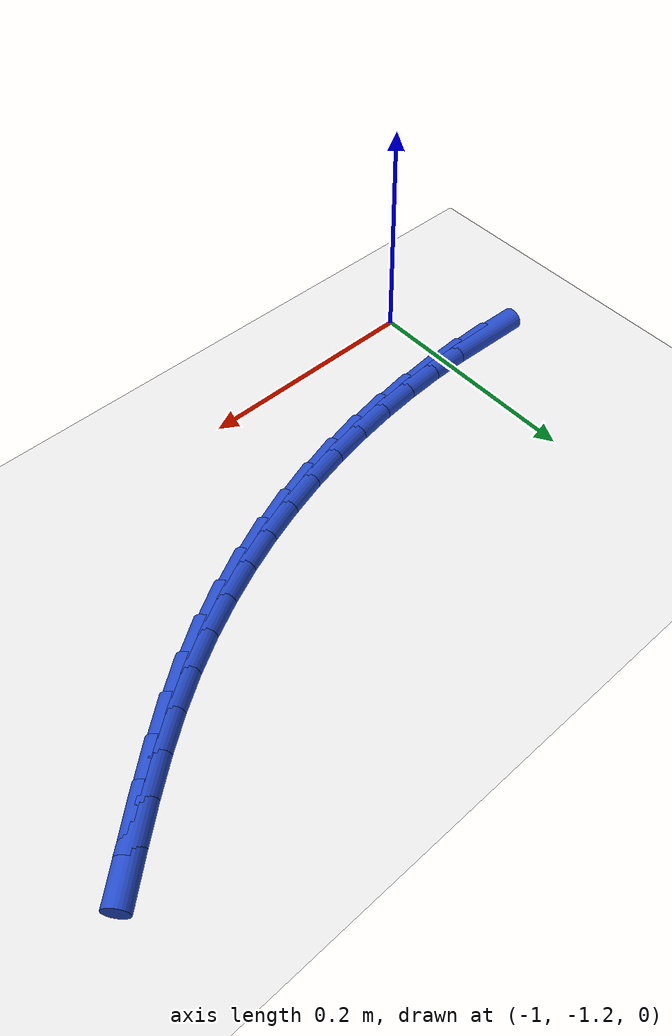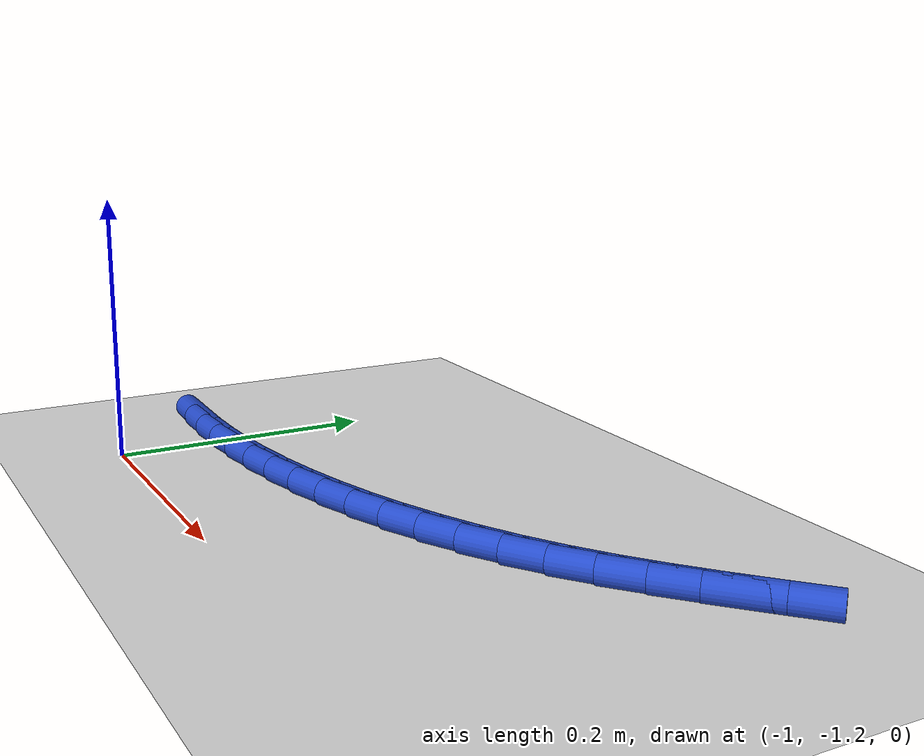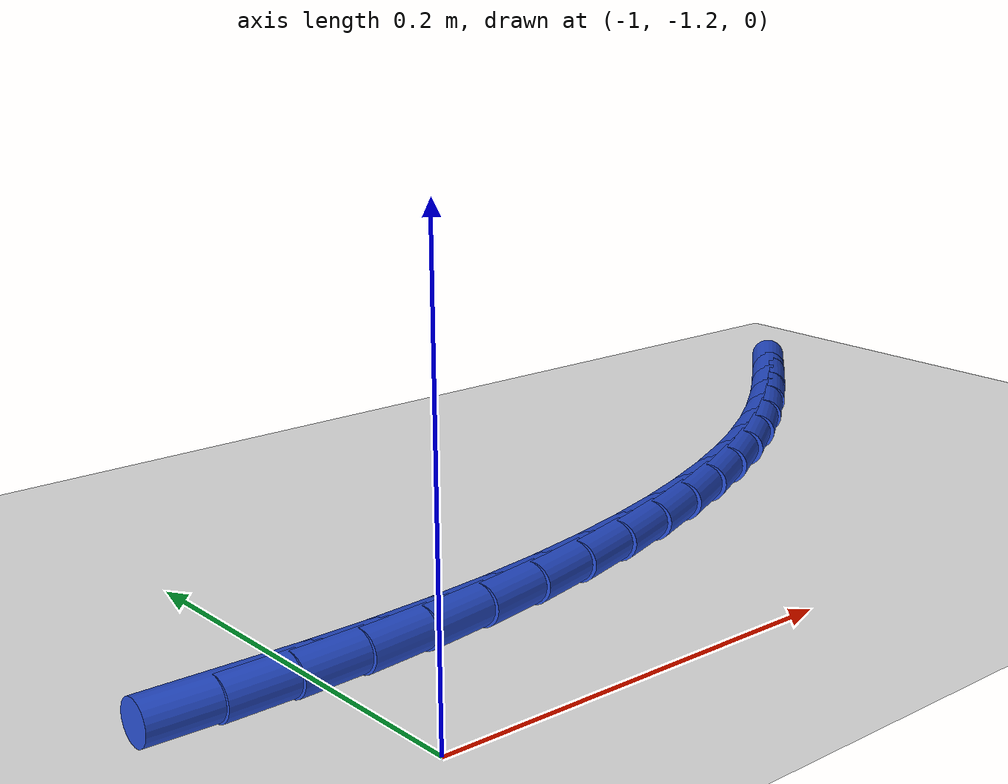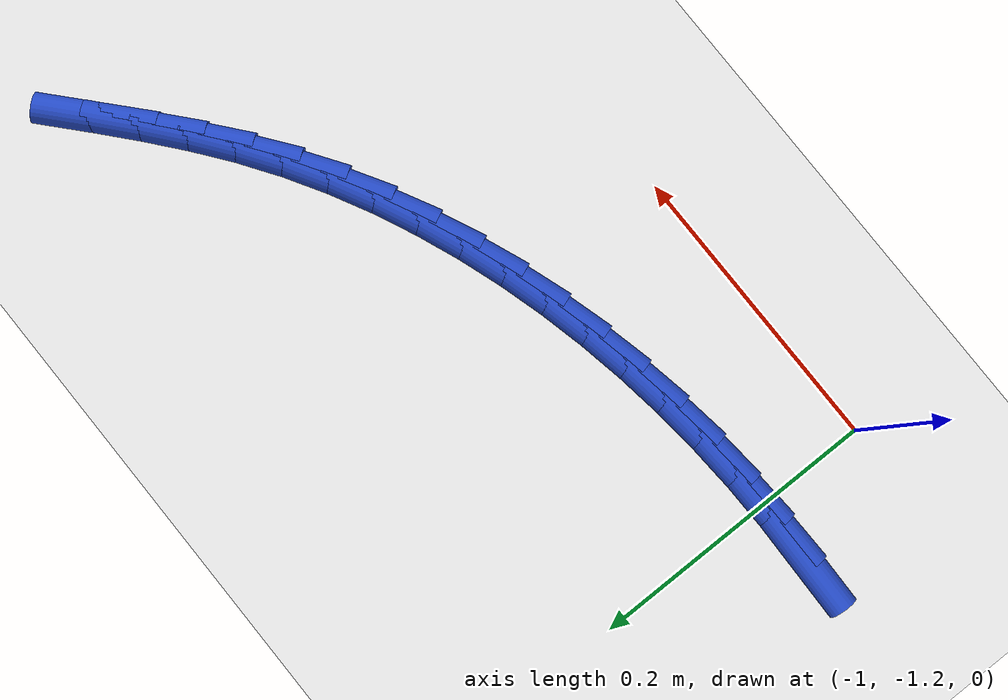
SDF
<sdf version="1.6">
 <world name="default">
  <model name="ground_plane">
   <static>1</static>
   <link name="link">
    <collision name="collision">
     <geometry><plane><normal>0 0 1</normal><size>100 100</size></plane></geometry>
     <surface><friction><ode><mu>100</mu><mu2>50</mu2></ode></friction></surface>
    </collision>
    <visual name="visual">
     <cast_shadows>0</cast_shadows>
     <geometry><plane><normal>0 0 1</normal><size>100 100</size></plane></geometry>
     <material>
      <script><uri>file://media/materials/scripts/gazebo.material</uri><name>Gazebo/WhiteGlow</name></script>
     </material>
    </visual>
   </link>
  </model>
  <model name="line">
   <link name="link_167">
    <pose>-1.0392434691467898 -1.1227421150203472 0.01 0 1.57 -0.02740872203684867</pose>
    <collision name="collision">
     <geometry><cylinder><radius>0.01</radius><length>0.08</length></cylinder></geometry>
    </collision>
    <visual name="visual">
     <material>
      <script><name>Gazebo/Blue</name><uri>file://media/materials/scripts/gazebo.material</uri></script>
     </material>
     <geometry><cylinder><radius>0.01</radius><length>0.08</length></cylinder></geometry>
    </visual>
   </link>
   <link name="link_168">
    <pose>-1.00741218728371 -1.123614788316414 0.01 0 1.57 0.014926419391272655</pose>
    <collision name="collision">
     <geometry><cylinder><radius>0.01</radius><length>0.08</length></cylinder></geometry>
    </collision>
    <visual name="visual">
     <material>
      <script><name>Gazebo/Blue</name><uri>file://media/materials/scripts/gazebo.material</uri></script>
     </material>
     <geometry><cylinder><radius>0.01</radius><length>0.08</length></cylinder></geometry>
    </visual>
   </link>
   <link name="link_169">
    <pose>-0.9754137959410025 -1.1231371314331944 0.01 0 1.57 0.05730956513300656</pose>
    <collision name="collision">
     <geometry><cylinder><radius>0.01</radius><length>0.08</length></cylinder></geometry>
    </collision>
    <visual name="visual">
     <material>
      <script><name>Gazebo/Blue</name><uri>file://media/materials/scripts/gazebo.material</uri></script>
     </material>
     <geometry><cylinder><radius>0.01</radius><length>0.08</length></cylinder></geometry>
    </visual>
   </link>
   <link name="link_170">
    <pose>-0.9433516610151589 -1.1212976501265615 0.01 0 1.57 0.09999479583110513</pose>
    <collision name="collision">
     <geometry><cylinder><radius>0.01</radius><length>0.08</length></cylinder></geometry>
    </collision>
    <visual name="visual">
     <material>
      <script><name>Gazebo/Blue</name><uri>file://media/materials/scripts/gazebo.material</uri></script>
     </material>
     <geometry><cylinder><radius>0.01</radius><length>0.08</length></cylinder></geometry>
    </visual>
   </link>
   <link name="link_171">
    <pose>-0.9113291484026679 -1.1180848501523901 0.01 0 1.57 0.143230797325263</pose>
    <collision name="collision">
     <geometry><cylinder><radius>0.01</radius><length>0.08</length></cylinder></geometry>
    </collision>
    <visual name="visual">
     <material>
      <script><name>Gazebo/Blue</name><uri>file://media/materials/scripts/gazebo.material</uri></script>
     </material>
     <geometry><cylinder><radius>0.01</radius><length>0.08</length></cylinder></geometry>
    </visual>
   </link>
   <link name="link_172">
    <pose>-0.8794496240000191 -1.1134872372665532 0.01 0 1.57 0.18726205923916114</pose>
    <collision name="collision">
     <geometry><cylinder><radius>0.01</radius><length>0.08</length></cylinder></geometry>
    </collision>
    <visual name="visual">
     <material>
      <script><name>Gazebo/Blue</name><uri>file://media/materials/scripts/gazebo.material</uri></script>
     </material>
     <geometry><cylinder><radius>0.01</radius><length>0.08</length></cylinder></geometry>
    </visual>
   </link>
   <link name="link_173">
    <pose>-0.8478164537037014 -1.1074933172249255 0.01 0 1.57 0.23232941200903104</pose>
    <collision name="collision">
     <geometry><cylinder><radius>0.01</radius><length>0.08</length></cylinder></geometry>
    </collision>
    <visual name="visual">
     <material>
      <script><name>Gazebo/Blue</name><uri>file://media/materials/scripts/gazebo.material</uri></script>
     </material>
     <geometry><cylinder><radius>0.01</radius><length>0.08</length></cylinder></geometry>
    </visual>
   </link>
   <link name="link_174">
    <pose>-0.8165330034102054 -1.1000915957833795 0.01 0 1.57 0.27866971302155535</pose>
    <collision name="collision">
     <geometry><cylinder><radius>0.01</radius><length>0.08</length></cylinder></geometry>
    </collision>
    <visual name="visual">
     <material>
      <script><name>Gazebo/Blue</name><uri>file://media/materials/scripts/gazebo.material</uri></script>
     </material>
     <geometry><cylinder><radius>0.01</radius><length>0.08</length></cylinder></geometry>
    </visual>
   </link>
   <link name="link_175">
    <pose>-0.7857026390160206 -1.0912705786977903 0.01 0 1.57 0.32651445855585887</pose>
    <collision name="collision">
     <geometry><cylinder><radius>0.01</radius><length>0.08</length></cylinder></geometry>
    </collision>
    <visual name="visual">
     <material>
      <script><name>Gazebo/Blue</name><uri>file://media/materials/scripts/gazebo.material</uri></script>
     </material>
     <geometry><cylinder><radius>0.01</radius><length>0.08</length></cylinder></geometry>
    </visual>
   </link>
   <link name="link_176">
    <pose>-0.7554287264176363 -1.0810187717240314 0.01 0 1.57 0.37608706482233073</pose>
    <collision name="collision">
     <geometry><cylinder><radius>0.01</radius><length>0.08</length></cylinder></geometry>
    </collision>
    <visual name="visual">
     <material>
      <script><name>Gazebo/Blue</name><uri>file://media/materials/scripts/gazebo.material</uri></script>
     </material>
     <geometry><cylinder><radius>0.01</radius><length>0.08</length></cylinder></geometry>
    </visual>
   </link>
   <link name="link_177">
    <pose>-0.7258146315115417 -1.0693246806179761 0.01 0 1.57 0.427598540408684</pose>
    <collision name="collision">
     <geometry><cylinder><radius>0.01</radius><length>0.08</length></cylinder></geometry>
    </collision>
    <visual name="visual">
     <material>
      <script><name>Gazebo/Blue</name><uri>file://media/materials/scripts/gazebo.material</uri></script>
     </material>
     <geometry><cylinder><radius>0.01</radius><length>0.08</length></cylinder></geometry>
    </visual>
   </link>
   <link name="link_178">
    <pose>-0.6969637201942259 -1.0561768111354985 0.01 0 1.57 0.4812412815033274</pose>
    <collision name="collision">
     <geometry><cylinder><radius>0.01</radius><length>0.08</length></cylinder></geometry>
    </collision>
    <visual name="visual">
     <material>
      <script><name>Gazebo/Blue</name><uri>file://media/materials/scripts/gazebo.material</uri></script>
     </material>
     <geometry><cylinder><radius>0.01</radius><length>0.08</length></cylinder></geometry>
    </visual>
   </link>
   <link name="link_179">
    <pose>-0.6689793583621801 -1.0415636690324728 0.01 0 1.57 0.5371807848181096</pose>
    <collision name="collision">
     <geometry><cylinder><radius>0.01</radius><length>0.08</length></cylinder></geometry>
    </collision>
    <visual name="visual">
     <material>
      <script><name>Gazebo/Blue</name><uri>file://media/materials/scripts/gazebo.material</uri></script>
     </material>
     <geometry><cylinder><radius>0.01</radius><length>0.08</length></cylinder></geometry>
    </visual>
   </link>
   <link name="link_180">
    <pose>-0.6419649119118932 -1.0254737600647728 0.01 0 1.57 0.5953417545572803</pose>
    <collision name="collision">
     <geometry><cylinder><radius>0.01</radius><length>0.08</length></cylinder></geometry>
    </collision>
    <visual name="visual">
     <material>
      <script><name>Gazebo/Blue</name><uri>file://media/materials/scripts/gazebo.material</uri></script>
     </material>
     <geometry><cylinder><radius>0.01</radius><length>0.08</length></cylinder></geometry>
    </visual>
   </link>
   <link name="link_181">
    <pose>-0.6160188901852315 -1.0079000011992234 0.01 0 1.57 0.6491924425959865</pose>
    <collision name="collision">
     <geometry><cylinder><radius>0.01</radius><length>0.08</length></cylinder></geometry>
    </collision>
    <visual name="visual">
     <material>
      <script><name>Gazebo/Blue</name><uri>file://media/materials/scripts/gazebo.material</uri></script>
     </material>
     <geometry><cylinder><radius>0.01</radius><length>0.08</length></cylinder></geometry>
    </visual>
   </link>
   <link name="link_182">
    <pose>-0.5910844096849142 -0.9889764527948468 0.01 0 1.57 0.6906925967341874</pose>
    <collision name="collision">
     <geometry><cylinder><radius>0.01</radius><length>0.08</length></cylinder></geometry>
    </collision>
    <visual name="visual">
     <material>
      <script><name>Gazebo/Blue</name><uri>file://media/materials/scripts/gazebo.material</uri></script>
     </material>
     <geometry><cylinder><radius>0.01</radius><length>0.08</length></cylinder></geometry>
    </visual>
   </link>
   <link name="link_183">
    <pose>-0.5669201701737555 -0.9690046810261912 0.01 0 1.57 0.7192713843849279</pose>
    <collision name="collision">
     <geometry><cylinder><radius>0.01</radius><length>0.08</length></cylinder></geometry>
    </collision>
    <visual name="visual">
     <material>
      <script><name>Gazebo/Blue</name><uri>file://media/materials/scripts/gazebo.material</uri></script>
     </material>
     <geometry><cylinder><radius>0.01</radius><length>0.08</length></cylinder></geometry>
    </visual>
   </link>
   <link name="link_184">
    <pose>-0.5432741566681724 -0.9482959842772233 0.01 0 1.57 0.7349966925981414</pose>
    <collision name="collision">
     <geometry><cylinder><radius>0.01</radius><length>0.08</length></cylinder></geometry>
    </collision>
    <visual name="visual">
     <material>
      <script><name>Gazebo/Blue</name><uri>file://media/materials/scripts/gazebo.material</uri></script>
     </material>
     <geometry><cylinder><radius>0.01</radius><length>0.08</length></cylinder></geometry>
    </visual>
   </link>
  </model>
 </world>
</sdf>
